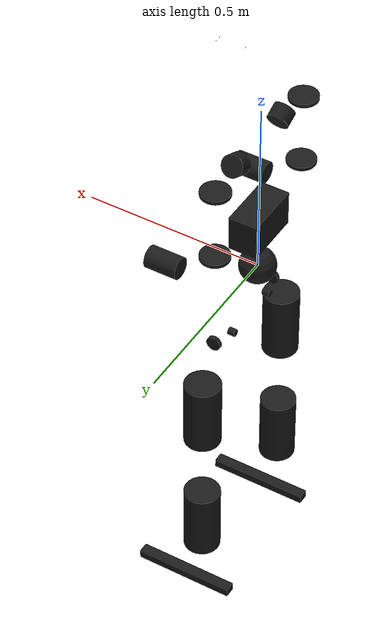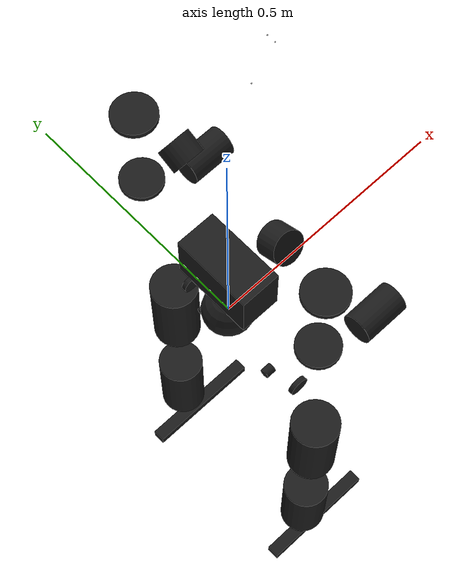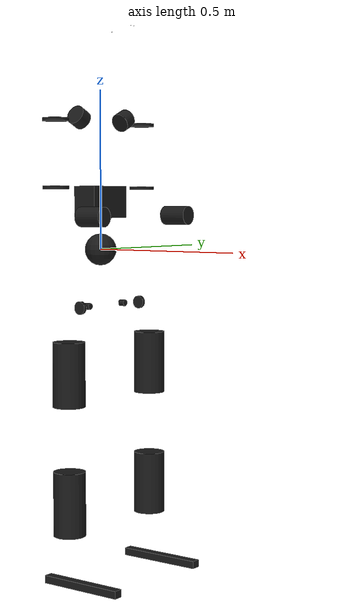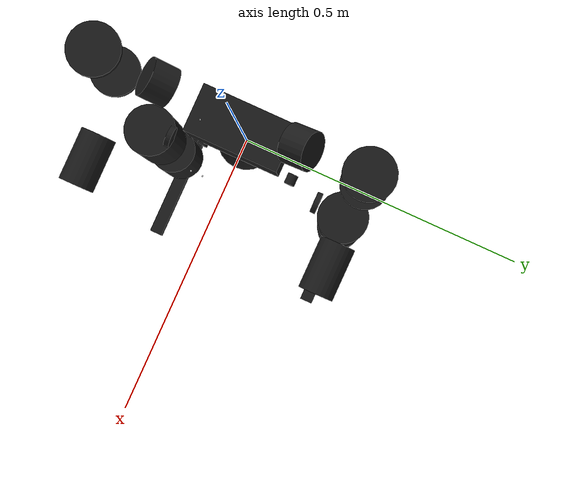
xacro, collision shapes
<?xml version="1.0"?>
<robot xmlns:xacro="http://www.ros.org/wiki/xacro" name="h1_description">
    <xacro:arg name="initial_positions_file" default="initial_positions.yaml" />

    <!-- Import h1_description urdf file -->
    <xacro:include filename="$(find GenericHRLoader)/urdf/h1.urdf" />

    <!-- Import control_xacro -->
    <xacro:include filename="h1_description.ros2_control.xacro" />

    <xacro:h1_description_ros2_control name="FakeSystem" initial_positions_file="$(arg initial_positions_file)"/>

</robot>

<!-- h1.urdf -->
<robot
  name="h1_description">

  <link
    name="pelvis">
    <inertial>
      <origin
        xyz="-0.0002 4E-05 -0.04522"
        rpy="0 0 0" />
      <mass
        value="5.39" />
      <inertia
        ixx="0.044582"
        ixy="8.7034E-05"
        ixz="-1.9893E-05"
        iyy="0.0082464"
        iyz="4.021E-06"
        izz="0.049021" />
    </inertial>
    <visual>
      <origin
        xyz="0 0 0"
        rpy="0 0 0" />
      <geometry>
        <mesh
          filename="file:///home/aurum/RosProjects/HRCSandbox/src/GenericHRLoader/meshes/pelvis.dae" />
      </geometry>
      <material
        name="dark">
        <color
          rgba="0.1 0.1 0.1 1" />
      </material>
    </visual>
    <collision>
      <origin xyz="0 0 0" rpy="0 0 0" />
      <geometry>
        <sphere radius="0.05"/>
      </geometry>
    </collision>
  </link>
  <link
    name="left_hip_yaw_link">
    <inertial>
      <origin
        xyz="-0.04923 0.0001 0.0072"
        rpy="0 0 0" />
      <mass
        value="2.244" />
      <inertia
        ixx="0.0025731"
        ixy="9.159E-06"
        ixz="-0.00051948"
        iyy="0.0030444"
        iyz="1.949E-06"
        izz="0.0022883" />
    </inertial>
    <visual>
      <origin
        xyz="0 0 0"
        rpy="0 0 0" />
      <geometry>
        <mesh
          filename="file:///home/aurum/RosProjects/HRCSandbox/src/GenericHRLoader/meshes/left_hip_yaw_link.dae" />
      </geometry>
      <material
        name="dark">
        <color
          rgba="0.1 0.1 0.1 1" />
      </material>
    </visual>
        <collision>
      <origin xyz="0.02 0 0" rpy="0 1.5707963267948966192313216916398 0" />
      <geometry>
        <cylinder radius="0.01" length="0.02"/>
      </geometry>
    </collision>
  </link>
  <joint
    name="left_hip_yaw_joint"
    type="revolute">
    <origin
      xyz="0 0.0875 -0.1742"
      rpy="0 0 0" />
    <parent
      link="pelvis" />
    <child
      link="left_hip_yaw_link" />
    <axis
      xyz="0 0 1" />
    <limit
      lower="-0.43"
      upper="0.43"
      effort="200.0"
      velocity="23.0" />
  </joint>
  <link
    name="left_hip_roll_link">
    <inertial>
      <origin
        xyz="-0.0058 -0.00319 -9E-05"
        rpy="0 0 0" />
      <mass
        value="2.232" />
      <inertia
        ixx="0.0020603"
        ixy="3.2115E-05"
        ixz="2.878E-06"
        iyy="0.0022482"
        iyz="-7.813E-06"
        izz="0.0024323" />
    </inertial>
    <visual>
      <origin
        xyz="0 0 0"
        rpy="0 0 0" />
      <geometry>
        <mesh
          filename="file:///home/aurum/RosProjects/HRCSandbox/src/GenericHRLoader/meshes/left_hip_roll_link.dae" />
      </geometry>
      <material
        name="dark">
        <color
          rgba="0.1 0.1 0.1 1" />
      </material>
    </visual>
    <collision>
      <origin xyz="0 0.06 0" rpy="1.5707963267948966192313216916398 0 0" />
      <geometry>
        <cylinder radius="0.02" length="0.01"/>
      </geometry>
    </collision>
  </link>
  <joint
    name="left_hip_roll_joint"
    type="revolute">
    <origin
      xyz="0.039468 0 0"
      rpy="0 0 0" />
    <parent
      link="left_hip_yaw_link" />
    <child
      link="left_hip_roll_link" />
    <axis
      xyz="1 0 0" />
    <limit
      lower="-0.43"
      upper="0.43"
      effort="200.0"
      velocity="23.0" />
  </joint>
  <link
    name="left_hip_pitch_link">
    <inertial>
      <origin
        xyz="0.00746 -0.02346 -0.08193"
        rpy="0 0 0" />
      <mass
        value="4.152" />
      <inertia
        ixx="0.082618"
        ixy="-0.00066654"
        ixz="0.0040725"
        iyy="0.081579"
        iyz="0.0072024"
        izz="0.0060081" />
    </inertial>
    <visual>
      <origin
        xyz="0 0 0"
        rpy="0 0 0" />
      <geometry>
        <mesh
          filename="file:///home/aurum/RosProjects/HRCSandbox/src/GenericHRLoader/meshes/left_hip_pitch_link.dae" />
      </geometry>
      <material
        name="dark">
        <color
          rgba="0.1 0.1 0.1 1" />
      </material>
    </visual>
    <collision>
      <origin xyz="0 0 -0.2" rpy="0 0 0" />
      <geometry>
        <cylinder radius="0.05" length="0.2"/>
      </geometry>
    </collision>
  </link>
  <joint
    name="left_hip_pitch_joint"
    type="revolute">
    <origin
      xyz="0 0.11536 0"
      rpy="0 0 0" />
    <parent
      link="left_hip_roll_link" />
    <child
      link="left_hip_pitch_link" />
    <axis
      xyz="0 1 0" />
    <limit
      lower="-3.14"
      upper="2.53"
      effort="200.0"
      velocity="23.0" />
  </joint>
  <link
    name="left_knee_link">
    <inertial>
      <origin
        xyz="-0.00136 -0.00512 -0.1384"
        rpy="0 0 0" />
      <mass
        value="1.721" />
      <inertia
        ixx="0.012205"
        ixy="-6.8431E-05"
        ixz="0.0010862"
        iyy="0.012509"
        iyz="0.00022549"
        izz="0.0020629" />
    </inertial>
    <visual>
      <origin
        xyz="0 0 0"
        rpy="0 0 0" />
      <geometry>
        <mesh
          filename="file:///home/aurum/RosProjects/HRCSandbox/src/GenericHRLoader/meshes/left_knee_link.dae" />
      </geometry>
      <material
        name="dark">
        <color
          rgba="0.1 0.1 0.1 1" />
      </material>
    </visual>
    <collision>
      <origin xyz="0 0 -0.2" rpy="0 0 0" />
      <geometry>
        <cylinder radius="0.05" length="0.2"/>
      </geometry>
    </collision>
  </link>
  <joint
    name="left_knee_joint"
    type="revolute">
    <origin
      xyz="0 0 -0.4"
      rpy="0 0 0" />
    <parent
      link="left_hip_pitch_link" />
    <child
      link="left_knee_link" />
    <axis
      xyz="0 1 0" />
    <limit
      lower="-0.26"
      upper="2.05"
      effort="300.0"
      velocity="14.0" />
  </joint>
  <link
    name="left_ankle_link">
    <inertial>
      <origin
        xyz="0.042575 -0.000001 -0.044672"
        rpy="0 0 0" />
      <mass
        value="0.474" />
      <inertia
        ixx="0.000159668"
        ixy="-0.000000005"
        ixz="0.000141063"
        iyy="0.002900286"
        iyz="0.000000014"
        izz="0.002805438" />
    </inertial>
    <visual>
      <origin
        xyz="0 0 0"
        rpy="0 0 0" />
      <geometry>
        <mesh
          filename="file:///home/aurum/RosProjects/HRCSandbox/src/GenericHRLoader/meshes/left_ankle_link.dae" />
      </geometry>
      <material
        name="dark">
        <color
          rgba="0.1 0.1 0.1 1" />
      </material>
    </visual>
    <collision>
      <origin xyz="0.05 0.0 -0.05" rpy="0 0 0" />
      <geometry>
        <box size="0.28 0.03 0.024"/>
      </geometry>
    </collision>
  </link>
  <joint
    name="left_ankle_joint"
    type="revolute">
    <origin
      xyz="0 0 -0.4"
      rpy="0 0 0" />
    <parent
      link="left_knee_link" />
    <child
      link="left_ankle_link" />
    <axis
      xyz="0 1 0" />
    <limit
      lower="-0.87"
      upper="0.52"
      effort="40.0"
      velocity="9.0" />
  </joint>
  <link
    name="right_hip_yaw_link">
    <inertial>
      <origin
        xyz="-0.04923 -0.0001 0.0072"
        rpy="0 0 0" />
      <mass
        value="2.244" />
      <inertia
        ixx="0.0025731"
        ixy="-9.159E-06"
        ixz="-0.00051948"
        iyy="0.0030444"
        iyz="-1.949E-06"
        izz="0.0022883" />
    </inertial>
    <visual>
      <origin
        xyz="0 0 0"
        rpy="0 0 0" />
      <geometry>
        <mesh
          filename="file:///home/aurum/RosProjects/HRCSandbox/src/GenericHRLoader/meshes/right_hip_yaw_link.dae" />
      </geometry>
      <material
        name="dark">
        <color
          rgba="0.1 0.1 0.1 1" />
      </material>
    </visual>
        <collision>
      <origin xyz="0.02 0 0" rpy="0 1.5707963267948966192313216916398 0" />
      <geometry>
        <cylinder radius="0.01" length="0.02"/>
      </geometry>
    </collision>
  </link>
  <joint
    name="right_hip_yaw_joint"
    type="revolute">
    <origin
      xyz="0 -0.0875 -0.1742"
      rpy="0 0 0" />
    <parent
      link="pelvis" />
    <child
      link="right_hip_yaw_link" />
    <axis
      xyz="0 0 1" />
    <limit
      lower="-0.43"
      upper="0.43"
      effort="200.0"
      velocity="23.0" />
  </joint>
  <link
    name="right_hip_roll_link">
    <inertial>
      <origin
        xyz="-0.0058 0.00319 -9E-05"
        rpy="0 0 0" />
      <mass
        value="2.232" />
      <inertia
        ixx="0.0020603"
        ixy="-3.2115E-05"
        ixz="2.878E-06"
        iyy="0.0022482"
        iyz="7.813E-06"
        izz="0.0024323" />
    </inertial>
    <visual>
      <origin
        xyz="0 0 0"
        rpy="0 0 0" />
      <geometry>
        <mesh
          filename="file:///home/aurum/RosProjects/HRCSandbox/src/GenericHRLoader/meshes/right_hip_roll_link.dae" />
      </geometry>
      <material
        name="dark">
        <color
          rgba="0.1 0.1 0.1 1" />
      </material>
    </visual>
    <collision>
      <origin xyz="0 -0.06 0" rpy="1.5707963267948966192313216916398 0 0" />
      <geometry>
        <cylinder radius="0.02" length="0.01"/>
      </geometry>
    </collision>
  </link>
  <joint
    name="right_hip_roll_joint"
    type="revolute">
    <origin
      xyz="0.039468 0 0"
      rpy="0 0 0" />
    <parent
      link="right_hip_yaw_link" />
    <child
      link="right_hip_roll_link" />
    <axis
      xyz="1 0 0" />
    <limit
      lower="-0.43"
      upper="0.43"
      effort="200.0"
      velocity="23.0" />
  </joint>
  <link
    name="right_hip_pitch_link">
    <inertial>
      <origin
        xyz="0.00746 0.02346 -0.08193"
        rpy="0 0 0" />
      <mass
        value="4.152" />
      <inertia
        ixx="0.082618"
        ixy="0.00066654"
        ixz="0.0040725"
        iyy="0.081579"
        iyz="-0.0072024"
        izz="0.0060081" />
    </inertial>
    <visual>
      <origin
        xyz="0 0 0"
        rpy="0 0 0" />
      <geometry>
        <mesh
          filename="file:///home/aurum/RosProjects/HRCSandbox/src/GenericHRLoader/meshes/right_hip_pitch_link.dae" />
      </geometry>
      <material
        name="dark">
        <color
          rgba="0.1 0.1 0.1 1" />
      </material>
    </visual>
    <collision>
      <origin xyz="0 0 -0.2" rpy="0 0 0" />
      <geometry>
        <cylinder radius="0.05" length="0.2"/>
      </geometry>
    </collision>
  </link>
  <joint
    name="right_hip_pitch_joint"
    type="revolute">
    <origin
      xyz="0 -0.11536 0"
      rpy="0 0 0" />
    <parent
      link="right_hip_roll_link" />
    <child
      link="right_hip_pitch_link" />
    <axis
      xyz="0 1 0" />
    <limit
      lower="-3.14"
      upper="2.53"
      effort="200.0"
      velocity="23.0" />
  </joint>
  <link
    name="right_knee_link">
    <inertial>
      <origin
        xyz="-0.00136 0.00512 -0.1384"
        rpy="0 0 0" />
      <mass
        value="1.721" />
      <inertia
        ixx="0.012205"
        ixy="6.8431E-05"
        ixz="0.0010862"
        iyy="0.012509"
        iyz="-0.00022549"
        izz="0.0020629" />
    </inertial>
    <visual>
      <origin
        xyz="0 0 0"
        rpy="0 0 0" />
      <geometry>
        <mesh
          filename="file:///home/aurum/RosProjects/HRCSandbox/src/GenericHRLoader/meshes/right_knee_link.dae" />
      </geometry>
      <material
        name="dark">
        <color
          rgba="0.1 0.1 0.1 1" />
      </material>
    </visual>
    <collision>
      <origin xyz="0 0 -0.2" rpy="0 0 0" />
      <geometry>
        <cylinder radius="0.05" length="0.2"/>
      </geometry>
    </collision>
  </link>
  <joint
    name="right_knee_joint"
    type="revolute">
    <origin
      xyz="0 0 -0.4"
      rpy="0 0 0" />
    <parent
      link="right_hip_pitch_link" />
    <child
      link="right_knee_link" />
    <axis
      xyz="0 1 0" />
    <limit
      lower="-0.26"
      upper="2.05"
      effort="300.0"
      velocity="14.0" />
  </joint>
  <link
    name="right_ankle_link">
    <inertial>
      <origin
        xyz="0.042575 0.000001 -0.044672"
        rpy="0 0 0" />
      <mass
        value="0.474" />
      <inertia
        ixx="0.000159668"
        ixy="0.000000005"
        ixz="0.000141063"
        iyy="0.002900286"
        iyz="-0.000000014"
        izz="0.002805438" />
    </inertial>
    <visual>
      <origin
        xyz="0 0 0"
        rpy="0 0 0" />
      <geometry>
        <mesh
          filename="file:///home/aurum/RosProjects/HRCSandbox/src/GenericHRLoader/meshes/right_ankle_link.dae" />
      </geometry>
      <material
        name="dark">
        <color
          rgba="0.1 0.1 0.1 1" />
      </material>
    </visual>
    <collision>
      <origin xyz="0.05 0.0 -0.05" rpy="0 0 0" />
      <geometry>
        <box size="0.28 0.03 0.024"/>
      </geometry>
    </collision>
  </link>
  <joint
    name="right_ankle_joint"
    type="revolute">
    <origin
      xyz="0 0 -0.4"
      rpy="0 0 0" />
    <parent
      link="right_knee_link" />
    <child
      link="right_ankle_link" />
    <axis
      xyz="0 1 0" />
    <limit
      lower="-0.87"
      upper="0.52"
      effort="40.0"
      velocity="9.0" />
  </joint>
  <link
    name="torso_link">
    <inertial>
      <origin
        xyz="0.000489 0.002797 0.20484"
        rpy="0 0 0" />
      <mass
        value="17.789" />
      <inertia
        ixx="0.4873"
        ixy="-0.00053763"
        ixz="0.0020276"
        iyy="0.40963"
        iyz="-0.00074582"
        izz="0.12785" />
    </inertial>
    <visual>
      <origin
        xyz="0 0 0"
        rpy="0 0 0" />
      <geometry>
        <mesh
          filename="file:///home/aurum/RosProjects/HRCSandbox/src/GenericHRLoader/meshes/torso_link.dae" />
      </geometry>
      <material
        name="dark">
        <color
          rgba="0.1 0.1 0.1 1" />
      </material>
    </visual>
    <collision>
      <origin xyz="0 0 0.15" rpy="0 0 0" />
      <geometry>
        <box size="0.08 0.16 0.1"/>
      </geometry>
    </collision>
  </link>
  <joint
    name="torso_joint"
    type="revolute">
    <origin
      xyz="0 0 0"
      rpy="0 0 0" />
    <parent
      link="pelvis" />
    <child
      link="torso_link" />
    <axis
      xyz="0 0 1" />
    <limit
      lower="-2.35"
      upper="2.35"
      effort="200.0"
      velocity="23.0" />
  </joint>
  <link
    name="left_shoulder_pitch_link">
    <inertial>
      <origin
        xyz="0.005045 0.053657 -0.015715"
        rpy="0 0 0" />
      <mass
        value="1.033" />
      <inertia
        ixx="0.0012985"
        ixy="-1.7333E-05"
        ixz="8.683E-06"
        iyy="0.00087279"
        iyz="3.9656E-05"
        izz="0.00097338" />
    </inertial>
    <visual>
      <origin
        xyz="0 0 0"
        rpy="0 0 0" />
      <geometry>
        <mesh
          filename="file:///home/aurum/RosProjects/HRCSandbox/src/GenericHRLoader/meshes/left_shoulder_pitch_link.dae" />
      </geometry>
      <material
        name="dark">
        <color
          rgba="0.1 0.1 0.1 1" />
      </material>
    </visual>
    <collision>
      <origin xyz="0 -0.05  0" rpy="1.5707963267948966192313216916398 0 0" />
      <geometry>
        <cylinder radius="0.03" length="0.04"/>
      </geometry>
    </collision>
  </link>
  <joint
    name="left_shoulder_pitch_joint"
    type="revolute">
    <origin
      xyz="0.0055 0.15535 0.42999"
      rpy="0.43633 0 0" />
    <parent
      link="torso_link" />
    <child
      link="left_shoulder_pitch_link" />
    <axis
      xyz="0 1 0" />
    <limit
      lower="-2.87"
      upper="2.87"
      effort="40.0"
      velocity="9.0" />
  </joint>
  <link
    name="left_shoulder_roll_link">
    <inertial>
      <origin
        xyz="0.000679 0.00115 -0.094076"
        rpy="0 0 0" />
      <mass
        value="0.793" />
      <inertia
        ixx="0.0015742"
        ixy="2.298E-06"
        ixz="-7.2265E-05"
        iyy="0.0016973"
        iyz="-6.3691E-05"
        izz="0.0010183" />
    </inertial>
    <visual>
      <origin
        xyz="0 0 0"
        rpy="0 0 0" />
      <geometry>
        <mesh
          filename="file:///home/aurum/RosProjects/HRCSandbox/src/GenericHRLoader/meshes/left_shoulder_roll_link.dae" />
      </geometry>
      <material
        name="dark">
        <color
          rgba="0.1 0.1 0.1 1" />
      </material>
    </visual>
    <collision>
      <origin xyz="0 0 -0.04" rpy="0 0 0" />
      <geometry>
        <cylinder radius="0.04" length="0.01"/>
      </geometry>
    </collision>
  </link>
  <joint
    name="left_shoulder_roll_joint"
    type="revolute">
    <origin
      xyz="-0.0055 0.0565 -0.0165"
      rpy="-0.43633 0 0" />
    <parent
      link="left_shoulder_pitch_link" />
    <child
      link="left_shoulder_roll_link" />
    <axis
      xyz="1 0 0" />
    <limit
      lower="-0.34"
      upper="3.11"
      effort="40.0"
      velocity="9.0" />
  </joint>
  <link
    name="left_shoulder_yaw_link">
    <inertial>
      <origin
        xyz="0.01365 0.002767 -0.16266"
        rpy="0 0 0" />
      <mass
        value="0.839" />
      <inertia
        ixx="0.003664"
        ixy="-1.0671E-05"
        ixz="0.00034733"
        iyy="0.0040789"
        iyz="7.0213E-05"
        izz="0.00066383" />
    </inertial>
    <visual>
      <origin
        xyz="0 0 0"
        rpy="0 0 0" />
      <geometry>
        <mesh
          filename="file:///home/aurum/RosProjects/HRCSandbox/src/GenericHRLoader/meshes/left_shoulder_yaw_link.dae" />
      </geometry>
      <material
        name="dark">
        <color
          rgba="0.1 0.1 0.1 1" />
      </material>
    </visual>
    <collision>
      <origin xyz="0 0 -0.11" rpy="0 0 0" />
      <geometry>
        <cylinder radius="0.04" length="0.01"/>
      </geometry>
    </collision>
  </link>
  <joint
    name="left_shoulder_yaw_joint"
    type="revolute">
    <origin
      xyz="0 0 -0.1343"
      rpy="0 0 0" />
    <parent
      link="left_shoulder_roll_link" />
    <child
      link="left_shoulder_yaw_link" />
    <axis
      xyz="0 0 1" />
    <limit
      lower="-1.3"
      upper="4.45"
      effort="18.0"
      velocity="20.0" />
  </joint>
  <link
    name="left_elbow_link">
    <inertial>
      <origin
        xyz="0.164862 0.000118 -0.015734"
        rpy="0 0 0" />
      <mass
        value="0.723" />
      <inertia
        ixx="0.00042388"
        ixy="-3.6086E-05"
        ixz="0.00029293"
        iyy="0.0060062"
        iyz="4.664E-06"
        izz="0.0060023" />
    </inertial>
    <visual>
      <origin
        xyz="0 0 0"
        rpy="0 0 0" />
      <geometry>
        <mesh
          filename="file:///home/aurum/RosProjects/HRCSandbox/src/GenericHRLoader/meshes/left_elbow_link.dae" />
      </geometry>
      <material
        name="dark">
        <color
          rgba="0.1 0.1 0.1 1" />
      </material>
    </visual>
    <collision>
      <origin xyz="0.125 0 0" rpy="0 1.57 0" />
      <geometry>
        <cylinder radius="0.03" length="0.09"/>
      </geometry>
    </collision>
  </link>
  <joint
    name="left_elbow_joint"
    type="revolute">
    <origin
      xyz="0.0185 0 -0.198"
      rpy="0 0 0" />
    <parent
      link="left_shoulder_yaw_link" />
    <child
      link="left_elbow_link" />
    <axis
      xyz="0 1 0" />
    <limit
      lower="-1.25"
      upper="2.61"
      effort="18.0"
      velocity="20.0" />
  </joint>
  <link
    name="right_shoulder_pitch_link">
    <inertial>
      <origin
        xyz="0.005045 -0.053657 -0.015715"
        rpy="0 0 0" />
      <mass
        value="1.033" />
      <inertia
        ixx="0.0012985"
        ixy="1.7333E-05"
        ixz="8.683E-06"
        iyy="0.00087279"
        iyz="-3.9656E-05"
        izz="0.00097338" />
    </inertial>
    <visual>
      <origin
        xyz="0 0 0"
        rpy="0 0 0" />
      <geometry>
        <mesh
          filename="file:///home/aurum/RosProjects/HRCSandbox/src/GenericHRLoader/meshes/right_shoulder_pitch_link.dae" />
      </geometry>
      <material
        name="dark">
        <color
          rgba="0.1 0.1 0.1 1" />
      </material>
    </visual>
    <collision>
      <origin xyz="0 0.05  0" rpy="-1.5707963267948966192313216916398 0 0" />
      <geometry>
        <cylinder radius="0.03" length="0.04"/>
      </geometry>
    </collision>
  </link>
  <joint
    name="right_shoulder_pitch_joint"
    type="revolute">
    <origin
      xyz="0.0055 -0.15535 0.42999"
      rpy="-0.43633 0 0" />
    <parent
      link="torso_link" />
    <child
      link="right_shoulder_pitch_link" />
    <axis
      xyz="0 1 0" />
    <limit
      lower="-2.87"
      upper="2.87"
      effort="40.0"
      velocity="9.0" />
  </joint>
  <link
    name="right_shoulder_roll_link">
    <inertial>
      <origin
        xyz="0.000679 -0.00115 -0.094076"
        rpy="0 0 0" />
      <mass
        value="0.793" />
      <inertia
        ixx="0.0015742"
        ixy="-2.298E-06"
        ixz="-7.2265E-05"
        iyy="0.0016973"
        iyz="6.3691E-05"
        izz="0.0010183" />
    </inertial>
    <visual>
      <origin
        xyz="0 0 0"
        rpy="0 0 0" />
      <geometry>
        <mesh
          filename="file:///home/aurum/RosProjects/HRCSandbox/src/GenericHRLoader/meshes/right_shoulder_roll_link.dae" />
      </geometry>
      <material
        name="dark">
        <color
          rgba="0.1 0.1 0.1 1" />
      </material>
    </visual>
    <collision>
      <origin xyz="0 0 -0.04" rpy="0 0 0" />
      <geometry>
        <cylinder radius="0.04" length="0.01"/>
      </geometry>
    </collision>
  </link>
  <joint
    name="right_shoulder_roll_joint"
    type="revolute">
    <origin
      xyz="-0.0055 -0.0565 -0.0165"
      rpy="0.43633 0 0" />
    <parent
      link="right_shoulder_pitch_link" />
    <child
      link="right_shoulder_roll_link" />
    <axis
      xyz="1 0 0" />
    <limit
      lower="-3.11"
      upper="0.34"
      effort="40.0"
      velocity="9.0" />
  </joint>
  <link
    name="right_shoulder_yaw_link">
    <inertial>
      <origin
        xyz="0.01365 -0.002767 -0.16266"
        rpy="0 0 0" />
      <mass
        value="0.839" />
      <inertia
        ixx="0.003664"
        ixy="1.0671E-05"
        ixz="0.00034733"
        iyy="0.0040789"
        iyz="-7.0213E-05"
        izz="0.00066383" />
    </inertial>
    <visual>
      <origin
        xyz="0 0 0"
        rpy="0 0 0" />
      <geometry>
        <mesh
          filename="file:///home/aurum/RosProjects/HRCSandbox/src/GenericHRLoader/meshes/right_shoulder_yaw_link.dae" />
      </geometry>
      <material
        name="dark">
        <color
          rgba="0.1 0.1 0.1 1" />
      </material>
    </visual>
    <collision>
      <origin xyz="0 0 -0.11" rpy="0 0 0" />
      <geometry>
        <cylinder radius="0.04" length="0.01"/>
      </geometry>
    </collision>
  </link>
  <joint
    name="right_shoulder_yaw_joint"
    type="revolute">
    <origin
      xyz="0 0 -0.1343"
      rpy="0 0 0" />
    <parent
      link="right_shoulder_roll_link" />
    <child
      link="right_shoulder_yaw_link" />
    <axis
      xyz="0 0 1" />
    <limit
      lower="-4.45"
      upper="1.3"
      effort="18.0"
      velocity="20.0" />
  </joint>
  <link
    name="right_elbow_link">
    <inertial>
      <origin
        xyz="0.164862 -0.000118 -0.015734"
        rpy="0 0 0" />
      <mass
        value="0.723" />
      <inertia
        ixx="0.00042388"
        ixy="3.6086E-05"
        ixz="0.00029293"
        iyy="0.0060062"
        iyz="-4.664E-06"
        izz="0.0060023" />
    </inertial>
    <visual>
      <origin
        xyz="0 0 0"
        rpy="0 0 0" />
      <geometry>
        <mesh
          filename="file:///home/aurum/RosProjects/HRCSandbox/src/GenericHRLoader/meshes/right_elbow_link.dae" />
      </geometry>
      <material
        name="dark">
        <color
          rgba="0.1 0.1 0.1 1" />
      </material>
    </visual>
    <collision>
      <origin xyz="0.125 0 0" rpy="0 1.57 0" />
      <geometry>
        <cylinder radius="0.03" length="0.09"/>
      </geometry>
    </collision>
  </link>
  <joint
    name="right_elbow_joint"
    type="revolute">
    <origin
      xyz="0.0185 0 -0.198"
      rpy="0 0 0" />
    <parent
      link="right_shoulder_yaw_link" />
    <child
      link="right_elbow_link" />
    <axis
      xyz="0 1 0" />
    <limit
      lower="-1.25"
      upper="2.61"
      effort="18.0"
      velocity="20.0" />
  </joint>
  <link name="imu_link"></link>
  <joint
    name="imu_joint"
    type="fixed">
    <origin
      xyz="-0.04452 -0.01891 0.27756"
      rpy="0 0 0" />
    <parent
      link="torso_link" />
    <child
      link="imu_link" />
  </joint>
  <link
    name="logo_link">
    <visual>
      <origin
        xyz="0 0 0"
        rpy="0 0 0" />
      <geometry>
        <mesh
          filename="file:///home/aurum/RosProjects/HRCSandbox/src/GenericHRLoader/meshes/logo_link.dae" />
      </geometry>
      <material
        name="white">
        <color
          rgba="1 1 1 1" />
      </material>
    </visual>
    <collision>
      <origin
        xyz="0 0 0"
        rpy="0 0 0" />
      <geometry>
        <sphere
          radius="0.001" />
      </geometry>
    </collision>
  </link>
  <joint
    name="logo_joint"
    type="fixed">
    <origin
      xyz="0 0 0"
      rpy="0 0 0" />
    <parent
      link="torso_link" />
    <child
      link="logo_link" />
    <axis
      xyz="0 0 0" />
  </joint>

  <link
    name="d435_left_imager_link">
    <visual>
      <origin
        xyz="0 0 0"
        rpy="0 0 0" />
      <geometry>
        <sphere
          radius="0.001" />
      </geometry>
      <material
        name="white">
        <color
          rgba="1 1 1 1" />
      </material>
    </visual>
    <collision>
      <origin
        xyz="0 0 0"
        rpy="0 0 0" />
      <geometry>
        <sphere
          radius="0.001" />
      </geometry>
    </collision>
  </link>
  <joint
    name="d435_left_imager_joint"
    type="fixed">
    <origin
      xyz="0.10848474394 0.0175 0.69317107367"
      rpy="-2.45735 0 -1.57080" />
    <parent
      link="torso_link" />
    <child
      link="d435_left_imager_link" />
    <axis
      xyz="0 0 0" />
  </joint>
  <link
    name="d435_rgb_module_link">
    <visual>
      <origin
        xyz="0 0 0"
        rpy="0 0 0" />
      <geometry>
        <sphere
          radius="0.001" />
      </geometry>
      <material
        name="white">
        <color
          rgba="1 1 1 1" />
      </material>
    </visual>
    <collision>
      <origin
        xyz="0 0 0"
        rpy="0 0 0" />
      <geometry>
        <sphere
          radius="0.001" />
      </geometry>
    </collision>
  </link>
  <joint
    name="d435_rgb_module_joint"
    type="fixed">
    <origin
      xyz="0.10848474394 0.0325 0.69317107367"
      rpy="-2.45735 0 -1.57080" />
    <parent
      link="torso_link" />
    <child
      link="d435_rgb_module_link" />
    <axis
      xyz="0 0 0" />
  </joint>
  <link
    name="mid360_link">
    <visual>
      <origin
        xyz="0 0 0"
        rpy="0 0 0" />
      <geometry>
        <sphere
          radius="0.001" />
      </geometry>
      <material
        name="white">
        <color
          rgba="1 1 1 1" />
      </material>
    </visual>
    <collision>
      <origin
        xyz="0 0 0"
        rpy="0 0 0" />
      <geometry>
        <sphere
          radius="0.001" />
      </geometry>
    </collision>
  </link>
  <joint
    name="mid360_joint"
    type="fixed">
    <origin
      xyz="0.04729990180 0 0.67492878653"
      rpy="0 0.243124 0" />
    <parent
      link="torso_link" />
    <child
      link="mid360_link" />
    <axis
      xyz="0 0 0" />
  </joint>

  <gazebo>
    <plugin name="gz::sim::systems::JointStatePublisher" filename="gz-sim-joint-state-publisher-system">
      <update_rate>20</update_rate>
      <joint_name>left_hip_yaw_joint</joint_name>
      <joint_name>left_hip_roll_joint</joint_name>
      <joint_name>left_hip_pitch_joint</joint_name>
      <joint_name>left_knee_joint</joint_name>
      <joint_name>left_ankle_joint</joint_name>
      <joint_name>right_hip_yaw_joint</joint_name>
      <joint_name>right_hip_roll_joint</joint_name>
      <joint_name>right_hip_pitch_joint</joint_name>
      <joint_name>right_knee_joint</joint_name>
      <joint_name>right_ankle_joint</joint_name>
      <joint_name>torso_joint</joint_name>
      <joint_name>left_shoulder_pitch_joint</joint_name>
      <joint_name>left_shoulder_roll_joint</joint_name>
      <joint_name>left_shoulder_yaw_joint</joint_name>
      <joint_name>left_elbow_joint</joint_name>
      <joint_name>right_shoulder_pitch_joint</joint_name>
      <joint_name>right_shoulder_roll_joint</joint_name>
      <joint_name>right_shoulder_yaw_joint</joint_name>
      <joint_name>right_elbow_joint</joint_name>
    </plugin>
  </gazebo>

  <gazebo>
     <plugin name="gz::sim::systems::JointTrajectoryController" filename="gz-sim-joint-trajectory-controller-system">
        <update_rate>20</update_rate>
     </plugin>
     <plugin
       filename="gz-sim-pose-publisher-system"
       name="gz::sim::systems::PosePublisher">
       <publish_link_pose>true</publish_link_pose>
       <use_pose_vector_msg>true</use_pose_vector_msg>
     </plugin>
     <plugin
       filename="gz-sim-odometry-publisher-system"
       name="gz::sim::systems::OdometryPublisher">
       <robot_base_frame>h1/torso_link</robot_base_frame>
       <dimensions>3</dimensions>
     </plugin>

  </gazebo>
  <gazebo reference="pelvis">
    <sensor name="imu_sensor" type="imu">
       <always_on>1</always_on>
       <update_rate>20</update_rate>
       <visualize>true</visualize>
       <topic>imu</topic>
       <plugin
        filename="gz-sim-imu-system"
        name="gz::sim::systems::Imu">
        </plugin>
    </sensor>
  </gazebo>
</robot>
